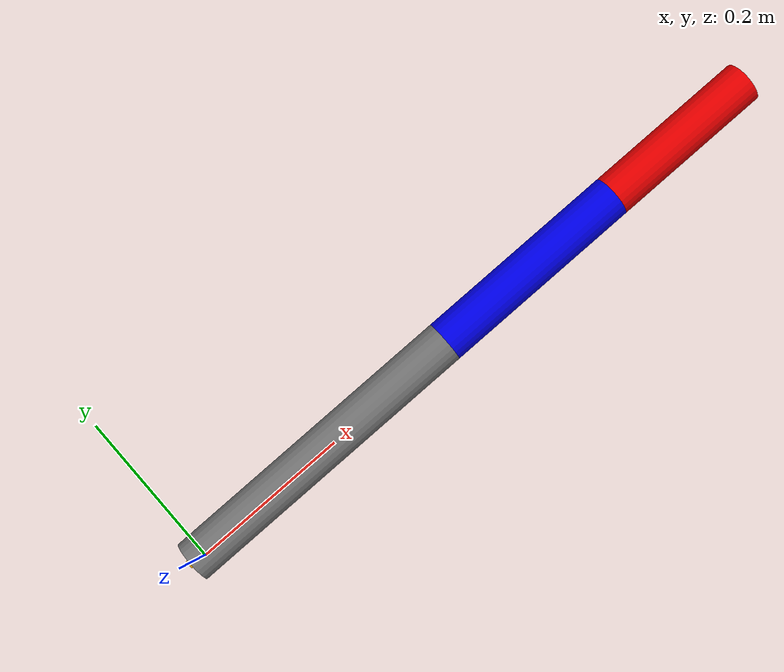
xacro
<?xml version="1.0"?>
<robot name="scara" xmlns:xacro="http://www.ros.org/wiki/xacro">

  <xacro:property name="L1" value="0.37"/>
  <xacro:property name="L2" value="0.25"/>
  <xacro:property name="L3" value="0.20"/>
  <xacro:property name="radius" value="0.025"/>

  <xacro:property name="M1" value="2.034"/>
  <xacro:property name="M2" value="1.374"/>
  <xacro:property name="M3" value="1.099"/>

  <xacro:property name="Ixx1" value="0.02355"/>
  <xacro:property name="Iyy1" value="0.02355"/>
  <xacro:property name="Izz1" value="0.02355"/>
  <xacro:property name="Ixx2" value="0.00720"/>
  <xacro:property name="Iyy2" value="0.00720"/>
  <xacro:property name="Izz2" value="0.00720"/>
  <xacro:property name="Ixx3" value="0.00384"/>
  <xacro:property name="Iyy3" value="0.00384"/>
  <xacro:property name="Izz3" value="0.00384"/>

  <material name="grey">
    <color rgba="0.5 0.5 0.5 1.0"/>
  </material>
  <material name="blue">
    <color rgba="0.0 0.0 1.0 1.0"/>
  </material>
  <material name="red">
    <color rgba="1.0 0.0 0.0 1.0"/>
  </material>

  <link name="base_link">
    <inertial>
      <mass value="0.001"/>
      <inertia ixx="0.000001" ixy="0" ixz="0" iyy="0.000001" iyz="0" izz="0.000001"/>
    </inertial>
    <visual>
      <geometry>
        <box size="0.01 0.01 0.01"/>
      </geometry>
    </visual>
  </link>

  <joint name="joint1" type="continuous">
    <parent link="base_link"/>
    <child link="link1"/>
    <origin xyz="0 0 0" rpy="0 0 0"/>
    <axis xyz="0 0 1"/>
    <dynamics damping="0.1" friction="0.0"/>
  </joint>

  <link name="link1">
    <inertial>
      <origin xyz="${L1/2} 0 0" rpy="0 1.5708 0"/>
      <mass value="${M1}"/>
      <inertia ixx="${Ixx1}" ixy="0" ixz="0" iyy="${Iyy1}" iyz="0" izz="${Izz1}"/>
    </inertial>
    <visual>
      <origin xyz="${L1/2} 0 0" rpy="0 1.5708 0"/>
      <geometry>
        <cylinder radius="${radius}" length="${L1}"/>
      </geometry>
      <material name="grey"/>
    </visual>
    <collision>
      <origin xyz="${L1/2} 0 0" rpy="0 1.5708 0"/>
      <geometry>
        <cylinder radius="${radius}" length="${L1}"/>
      </geometry>
    </collision>
  </link>

  <joint name="joint2" type="continuous">
    <parent link="link1"/>
    <child link="link2"/>
    <origin xyz="${L1} 0 0" rpy="0 0 0"/>
    <axis xyz="0 0 1"/>
    <dynamics damping="0.1" friction="0.0"/>
  </joint>

  <link name="link2">
    <inertial>
      <origin xyz="${L2/2} 0 0" rpy="0 1.5708 0"/>
      <mass value="${M2}"/>
      <inertia ixx="${Ixx2}" ixy="0" ixz="0" iyy="${Iyy2}" iyz="0" izz="${Izz2}"/>
    </inertial>
    <visual>
      <origin xyz="${L2/2} 0 0" rpy="0 1.5708 0"/>
      <geometry>
        <cylinder radius="${radius}" length="${L2}"/>
      </geometry>
      <material name="blue"/>
    </visual>
    <collision>
      <origin xyz="${L2/2} 0 0" rpy="0 1.5708 0"/>
      <geometry>
        <cylinder radius="${radius}" length="${L2}"/>
      </geometry>
    </collision>
  </link>

  <joint name="joint3" type="continuous">
    <parent link="link2"/>
    <child link="link3"/>
    <origin xyz="${L2} 0 0" rpy="0 0 0"/>
    <axis xyz="0 0 1"/>
    <dynamics damping="0.1" friction="0.0"/>
  </joint>

  <link name="link3">
    <inertial>
      <origin xyz="${L3/2} 0 0" rpy="0 1.5708 0"/>
      <mass value="${M3}"/>
      <inertia ixx="${Ixx3}" ixy="0" ixz="0" iyy="${Iyy3}" iyz="0" izz="${Izz3}"/>
    </inertial>
    <visual>
      <origin xyz="${L3/2} 0 0" rpy="0 1.5708 0"/>
      <geometry>
        <cylinder radius="${radius}" length="${L3}"/>
      </geometry>
      <material name="red"/>
    </visual>
    <collision>
      <origin xyz="${L3/2} 0 0" rpy="0 1.5708 0"/>
      <geometry>
        <cylinder radius="${radius}" length="${L3}"/>
      </geometry>
    </collision>
  </link>

  <link name="tool0"/>
  <joint name="tool_joint" type="fixed">
    <parent link="link3"/>
    <child link="tool0"/>
    <origin xyz="${L3} 0 0" rpy="0 0 0"/>
  </joint>

  <link name="world"/>
  <joint name="world_to_base" type="fixed">
    <parent link="world"/>
    <child link="base_link"/>
    <origin xyz="0 0 0.1" rpy="0 0 0"/>
  </joint>

  <gazebo>
    <plugin filename="gz_ros2_control-system" name="gz_ros2_control::GazeboSimROS2ControlPlugin">
      <parameters>$(find scara_sim)/config/scara_controllers.yaml</parameters>
    </plugin>
  </gazebo>

    <ros2_control name="GazeboSimSystem" type="system">
    <hardware>
      <plugin>gz_ros2_control/GazeboSimSystem</plugin>
    </hardware>
    <joint name="joint1">
      <command_interface name="effort">
        <param name="min">-1000</param>
        <param name="max">1000</param>
      </command_interface>
      <state_interface name="position">
        <param name="initial_value">1.0702</param>
      </state_interface>
      <state_interface name="velocity"/>
      <state_interface name="effort"/>
    </joint>
    <joint name="joint2">
      <command_interface name="effort">
        <param name="min">-1000</param>
        <param name="max">1000</param>
      </command_interface>
      <state_interface name="position">
        <param name="initial_value">1.2934</param>
      </state_interface>
      <state_interface name="velocity"/>
      <state_interface name="effort"/>
    </joint>
    <joint name="joint3">
      <command_interface name="effort">
        <param name="min">-1000</param>
        <param name="max">1000</param>
      </command_interface>
      <state_interface name="position">
        <param name="initial_value">2.3488</param>
      </state_interface>
      <state_interface name="velocity"/>
      <state_interface name="effort"/>
    </joint>
  </ros2_control>
</robot>
